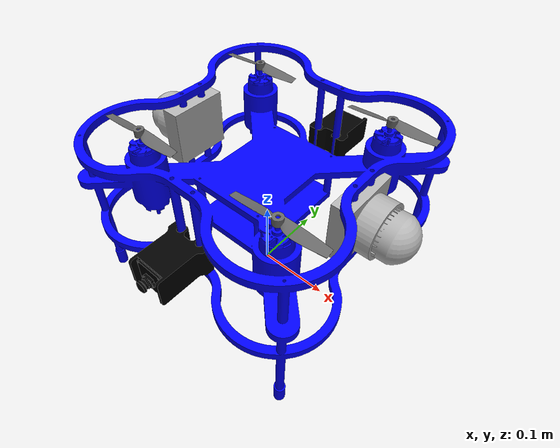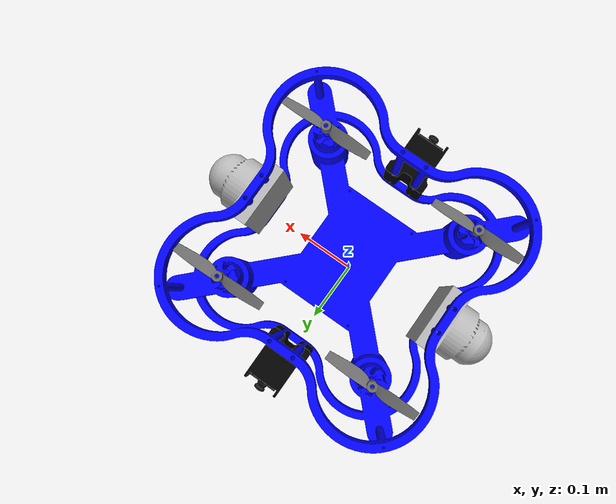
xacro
<?xml version="1.0"?>
<robot name="construction_drone" xmlns:xacro="http://www.ros.org/wiki/xacro">
  <!-- Include base and LiDAR XACROs -->
  <xacro:include filename="$(find drone_description)/urdf/drone_base.xacro"/>
  <xacro:include filename="$(find drone_description)/urdf/airy_lidar.xacro"/>
  <xacro:include filename="$(find drone_description)/urdf/fisheye_camera.xacro"/>
  <xacro:include filename="$(find drone_description)/urdf/propeller.xacro" />

  <!-- Instantiate LiDARs -->
  <xacro:robosense_airy_lidar name="lidar_right" parent="base_link" xyz="0.122 0.0 0.18" rpy="0 0 0"/>
  <xacro:robosense_airy_lidar name="lidar_left"  parent="base_link" xyz="-0.122 0.0 0.18" rpy="0 0 3.14159"/>

  <!-- Instantiate Fisheye Cameras -->
  <xacro:fisheye_camera name="fisheye_camera_front" parent="base_link" xyz="0.0 0.139 0.14" rpy="0 0 3.14159" hfov="2.094"/>
  <xacro:fisheye_camera name="fisheye_camera_rear"  parent="base_link" xyz="0.0 -0.139 0.14" rpy="0 0 0" hfov="2.094"/>
  <xacro:fisheye_camera name="fisheye_camera_below" parent="base_link" xyz="0.0 0.0 0.095" rpy="1.5708 0 0" hfov="2.094"/>

  <!-- Instantiate Propellers -->
  <xacro:propeller name="front_right_prop" parent="base_link" xyz="0.1050 0.105 0.24122" rpy="0 0 0"/>
  <xacro:propeller name="front_left_prop"  parent="base_link" xyz="-0.105 0.105 0.24122" rpy="0 0 0"/>
  <xacro:propeller name="rear_left_prop"   parent="base_link" xyz="-0.105 -0.105 0.24122" rpy="0 0 0"/>
  <xacro:propeller name="rear_right_prop"  parent="base_link" xyz="0.105 -0.105 0.24122" rpy="0 0 0"/>

  <!-- Gazebo plugin to enable ROS control -->
  <gazebo>
    <plugin name="gazebo_ros_control" filename="libgazebo_ros_control.so">
      <robotNamespace>/</robotNamespace>
    </plugin>
  </gazebo>

  <!-- Propeller transmissions -->
  <transmission name="front_right_prop_transmission">
    <type>transmission_interface/SimpleTransmission</type>
    <joint name="front_right_prop_joint">
      <hardwareInterface>hardware_interface/VelocityJointInterface</hardwareInterface>
    </joint>
    <actuator name="front_right_prop_motor">
      <hardwareInterface>hardware_interface/VelocityJointInterface</hardwareInterface>
      <mechanicalReduction>1</mechanicalReduction>
    </actuator>
  </transmission>
  <transmission name="front_left_prop_transmission">
    <type>transmission_interface/SimpleTransmission</type>
    <joint name="front_left_prop_joint">
      <hardwareInterface>hardware_interface/VelocityJointInterface</hardwareInterface>
    </joint>
    <actuator name="front_left_prop_motor">
      <hardwareInterface>hardware_interface/VelocityJointInterface</hardwareInterface>
      <mechanicalReduction>1</mechanicalReduction>
    </actuator>
  </transmission>
  <transmission name="rear_left_prop_transmission">
    <type>transmission_interface/SimpleTransmission</type>
    <joint name="rear_left_prop_joint">
      <hardwareInterface>hardware_interface/VelocityJointInterface</hardwareInterface>
    </joint>
    <actuator name="rear_left_prop_motor">
      <hardwareInterface>hardware_interface/VelocityJointInterface</hardwareInterface>
      <mechanicalReduction>1</mechanicalReduction>
    </actuator>
  </transmission>
  <transmission name="rear_right_prop_transmission">
    <type>transmission_interface/SimpleTransmission</type>
    <joint name="rear_right_prop_joint">
      <hardwareInterface>hardware_interface/VelocityJointInterface</hardwareInterface>
    </joint>
    <actuator name="rear_right_prop_motor">
      <hardwareInterface>hardware_interface/VelocityJointInterface</hardwareInterface>
      <mechanicalReduction>1</mechanicalReduction>
    </actuator>
  </transmission>

  <!-- LiftDragPlugin: generates lift from joint velocity -->
  <gazebo>
    <plugin name="liftdrag_front_right" filename="libLiftDragPlugin.so">
      <link_name>front_right_prop_link</link_name>
      <control_joint>front_right_prop_joint</control_joint>
      <a0>0.1</a0>
      <cla>4.0</cla>
      <cda>0.01</cda>
      <area>2.0</area>
      <air_density>1.225</air_density>
      <cp>0 0 0</cp>
      <forward>1 0 0</forward>
      <upward>0 0 -1</upward>
    </plugin>
  </gazebo>
  <gazebo>
    <plugin name="liftdrag_front_left" filename="libLiftDragPlugin.so">
      <link_name>front_left_prop_link</link_name>
      <control_joint>front_left_prop_joint</control_joint>
      <a0>0.1</a0><cla>4.0</cla><cda>0.01</cda><area>2.0</area><air_density>1.225</air_density>
      <cp>0 0 0</cp>
      <forward>1 0 0</forward><upward>0 0 1</upward>
    </plugin>
  </gazebo>
  <gazebo>
    <plugin name="liftdrag_rear_left" filename="libLiftDragPlugin.so">
      <link_name>rear_left_prop_link</link_name>
      <control_joint>rear_left_prop_joint</control_joint>
      <a0>0.1</a0><cla>4.0</cla><cda>0.01</cda><area>2.0</area><air_density>1.225</air_density>
      <cp>0 0 0</cp>
      <forward>1 0 0</forward><upward>0 0 -1</upward>
    </plugin>
  </gazebo>
  <gazebo>
    <plugin name="liftdrag_rear_right" filename="libLiftDragPlugin.so">
      <link_name>rear_right_prop_link</link_name>
      <control_joint>rear_right_prop_joint</control_joint>
      <a0>0.1</a0><cla>4.0</cla><cda>0.01</cda><area>2.0</area><air_density>1.225</air_density>
      <cp>0 0 0</cp>
      <forward>1 0 0</forward><upward>0 0 1</upward>
    </plugin>
  </gazebo>

</robot>

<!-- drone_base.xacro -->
<robot name="drone_base" xmlns:xacro="http://www.ros.org/wiki/xacro">
  <!-- Dummy root link to satisfy KDL (no inertia) -->

  <!-- Base link (drone chassis) -->
  <link name="base_link">
    <visual>
      <origin xyz="0 0 0.1" rpy="0 0 0"/>
      <geometry>
        <mesh filename="package://drone_description/meshes/drone_base_w_motors.stl" scale="1 1 1"/> <!-- DAE mesh, assuming mm units -->
      </geometry>
      <material name="blue">
        <color rgba="0 0 1 1"/> <!-- Fallback color if DAE lacks textures -->
      </material>
    </visual>
    <collision>
      <origin xyz="0 0 0.1" rpy="0 0 0"/>
      <geometry>
        <box size="0.3 0.3 0.2"/>
      </geometry>
    </collision>
    <inertial>
      <mass value="0.5"/> <!-- Placeholder: 1kg, adjust from CAD -->
      <inertia ixx="0.01" ixy="0.0" ixz="0.0" iyy="0.01" iyz="0.0" izz="0.01"/> <!-- Placeholder, adjust from CAD -->
    </inertial>
  </link>

  <!-- Fixed joint connecting world_link to base_link -->
</robot>

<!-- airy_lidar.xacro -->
<robot name="airy_lidar" xmlns:xacro="http://www.ros.org/wiki/xacro">
  <!-- Macro for dome-like depth camera -->
  <xacro:macro name="robosense_airy_lidar" params="name parent xyz rpy">
    <link name="${name}_link">
      <visual>
        <origin xyz="0 0 0" rpy="0 0 0"/>
        <geometry>
          <mesh filename="package://drone_description/meshes/airy_lidar.dae" scale="1 1 1"/>
        </geometry>
        <material name="silver">
          <color rgba="0.7 0.7 0.7 1"/>
        </material>
      </visual>
      <collision>
        <origin xyz="0 0 0" rpy="0 0 0"/>
        <geometry>
          <mesh filename="package://drone_description/meshes/airy_lidar.dae" scale="1 1 1"/>
        </geometry>
      </collision>
      <inertial>
        <mass value="0.0"/>
        <inertia ixx="0.0001" ixy="0.0" ixz="0.0" iyy="0.0001" iyz="0.0" izz="0.0001"/>
      </inertial>
    </link>

    <joint name="${name}_to_${parent}" type="fixed">
      <parent link="${parent}"/>
      <child link="${name}_link"/>
      <origin xyz="${xyz}" rpy="${rpy}"/>
    </joint>

    <!-- Gazebo Sensor -->

    </xacro:macro>

    <!-- Gazebo Reference -->

  <!-- Instantiate it (you can uncomment to use directly) -->
</robot>

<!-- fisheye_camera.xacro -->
<robot name="fisheye_camera" xmlns:xacro="http://www.ros.org/wiki/xacro">
  <!-- Macro for wide-angle (fisheye) camera -->
  <xacro:macro name="fisheye_camera" params="name parent xyz rpy">
    <link name="${name}_link">
      <visual>
        <origin xyz="0 0 0" rpy="0 0 0"/>
        <geometry>
          <mesh filename="package://drone_description/meshes/fisheye_camera.dae" scale="1 1 1"/>
        </geometry>
        <material name="black">
          <color rgba="0 0 0 1"/>
        </material>
      </visual>
      <collision>
        <origin xyz="0 0 0" rpy="0 0 0"/>
        <geometry>
          <mesh filename="package://drone_description/meshes/fisheye_camera.dae" scale="1 1 1"/>
        </geometry>
      </collision>
      <inertial>
        <mass value="0.0"/>
        <inertia ixx="0.00001" ixy="0.0" ixz="0.0" iyy="0.00001" iyz="0.0" izz="0.00001"/>
      </inertial>
    </link>

    <joint name="${name}_to_${parent}" type="fixed">
      <parent link="${parent}"/>
      <child link="${name}_link"/>
      <origin xyz="${xyz}" rpy="${rpy}"/>
    </joint>

    <link name="${name}_optical_frame"/>
    <joint name="${name}_optical_from_link" type="fixed">
      <parent link="${name}_link"/>
      <child  link="${name}_optical_frame"/>
      <!-- camera_link -> camera_optical (OpenCV) -->
      <origin xyz="0 0 0" rpy="-1.57079632679 0 -1.57079632679"/>
    </joint>

    <!-- Wide-angle (fisheye) Gazebo sensor -->
  </xacro:macro>
</robot>

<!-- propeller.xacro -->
<robot name="propeller" xmlns:xacro="http://www.ros.org/wiki/xacro">

  <xacro:macro name="propeller" params="name parent xyz rpy">
    <link name="${name}_link">
      <visual>
        <origin xyz="0 0 0" rpy="0 0 0"/>
        <geometry>
          <mesh filename="package://drone_description/meshes/propeller.dae" scale="1 1 1"/>
        </geometry>
        <material name="gray">
          <color rgba="0.4 0.4 0.4 1"/>
        </material>
      </visual>

      <collision>
        <origin xyz="0 0 0" rpy="0 0 0"/>
        <geometry>
          <mesh filename="package://drone_description/meshes/propeller.dae" scale="1 1 1"/>
        </geometry>
      </collision>

      <inertial>
        <mass value="0.02"/>
        <inertia ixx="0.000001" ixy="0" ixz="0" iyy="0.000001" iyz="0" izz="0.000001"/>
      </inertial>
    </link>

    <joint name="${name}_joint" type="continuous">
      <parent link="${parent}"/>
      <child link="${name}_link"/>
      <origin xyz="${xyz}" rpy="${rpy}"/>
      <axis xyz="0 0 1"/> <!-- Spinning around Z -->
      <limit effort="1.0" velocity="100.0" />
    </joint>
  </xacro:macro>

</robot>
